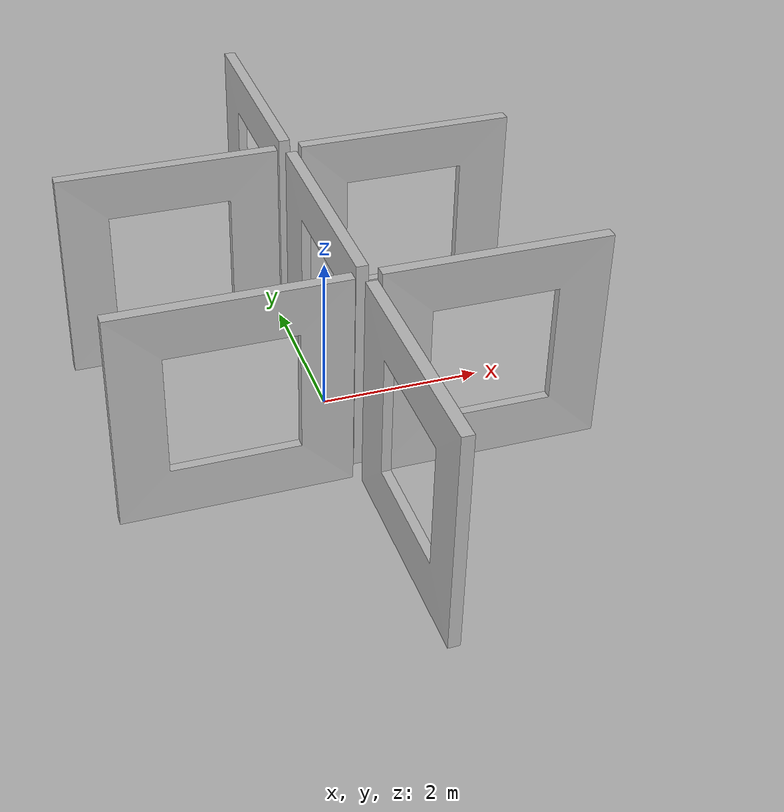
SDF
<?xml version="1.0" ?>
<?xml-model href="http://sdformat.org/schemas/root.xsd" schematypens="http://www.w3.org/2001/XMLSchema"?>
<sdf version="1.5">
  <world name="default">

    <!-- coordinate system {-->
    <spherical_coordinates>
      <surface_model>EARTH_WGS84</surface_model>
      <latitude_deg>47.397743</latitude_deg>
      <longitude_deg>8.545594</longitude_deg>
      <elevation>0.0</elevation>
      <heading_deg>0</heading_deg>
    </spherical_coordinates>

    <!-- physics engine {-->
    <physics name="default_physics" default="0" type="ode">
      <gravity>0 0 -9.8066</gravity>
      <ode>
        <solver>
          <type>quick</type>
          <iters>10</iters>
          <sor>1.3</sor>
          <use_dynamic_moi_rescaling>0</use_dynamic_moi_rescaling>
        </solver>
        <constraints>
          <cfm>0</cfm>
          <erp>0.2</erp>
          <contact_max_correcting_vel>250</contact_max_correcting_vel>
          <contact_surface_layer>0.004</contact_surface_layer>
        </constraints>
      </ode>
      <max_step_size>0.004</max_step_size>
      <real_time_factor>1</real_time_factor>
      <real_time_update_rate>250</real_time_update_rate>
      <magnetic_field>6.0e-06 2.3e-05 -4.2e-05</magnetic_field>
    </physics>

    <!-- setup shadows {-->
    <scene>
      <shadows>false</shadows>
      <sky>
        <clouds/>
      </sky>
    </scene>

    <!-- sun {-->

    <light name='sun' type='directional'>
      <pose frame=''>0 0 1000 0.4 0.2 0</pose>
      <diffuse>1 1 1 1</diffuse>
      <specular>0.6 0.6 0.6 1</specular>
      <direction>0.1 0.1 -0.9</direction>
      <attenuation>
        <range>20</range>
        <constant>0.5</constant>
        <linear>0.01</linear>
        <quadratic>0.001</quadratic>
      </attenuation>
      <cast_shadows>1</cast_shadows>
    </light>

    <!-- ground plane {-->
    <model name="ground_plane">
      <static>true</static>
      <link name="link">
        <collision name="collision">
          <pose>0 0 0 0 0 0</pose>
          <geometry>
            <plane>
              <normal>0 0 1</normal>
              <size>250 250</size>
            </plane>
          </geometry>
          <surface>
            <friction>
              <ode>
                <mu>1</mu>
                <mu2>1</mu2>
              </ode>
            </friction>
          </surface>
        </collision>
        <visual name="visual">
          <pose>0 0 0 0 0 0</pose>
          <cast_shadows>false</cast_shadows>
          <geometry>
            <plane>
              <normal>0 0 1</normal>
              <size>250 250</size>
            </plane>
          </geometry>
          <material>
            <ambient>0.5 0.5 0.5 1</ambient>
            <diffuse>0.7 0.7 0.7 1</diffuse>
            <specular>0.1 0.1 0.1 1</specular>
          </material>
        </visual>
      </link>
    </model>

    <!-- THE VOID (for spawning objects out of camera view) {-->
    <model name='the_void'>
      <static>1</static>
      <link name='link'>
        <pose frame=''>0 0 0.1 0 -0 0</pose>
        <visual name='the_void'>
          <pose frame=''>0 0 2 0 -0 0</pose>
          <geometry>
            <sphere>
              <radius>0.25</radius>
            </sphere>
          </geometry>
          <material>
            <ambient>0 0 0 1</ambient>
            <diffuse>0 0 0 1</diffuse>
            <specular>0.1 0.1 0.1 1</specular>
          </material>
        </visual>
        <self_collide>0</self_collide>
        <enable_wind>0</enable_wind>
        <kinematic>0</kinematic>
      </link>
      <pose frame=''>-1000 -1000 0 0 0 0</pose>
    </model>

    <!-- user camera {-->
    <gui>
      <camera name="camera">
        <pose>-60 -100 30 0 0.4 0.89</pose>
      </camera>
    </gui>

    <!-- Gate 1 -->
    <include>
      <uri>model://gate</uri>
      <pose>-1.5 -1.5 1.45 0 0 0</pose>
      <name>gate1</name>
    </include>

   <!-- Gate 2 = 6 -->

   <!-- Gate 3 -->
    <include>
      <uri>model://gate</uri>
      <pose>1.5 1.5 1.45 0 0 0</pose>
      <name>gate2</name>
    </include>

   <!-- Gate 4 -->
    <include>
      <uri>model://gate</uri>
      <pose>0.0 3.0 1.45 0 0 1.5708</pose>
      <name>gate3</name>
    </include>

   <!-- Gate 5 -->
    <include>
      <uri>model://gate</uri>
      <pose>-1.5 1.5 1.45 0 0 3.14</pose>
      <name>gate4top</name>
    </include>

   <!-- Gate 6 -->
    <include>
      <uri>model://gate</uri>
      <pose>0.0 0.0 1.45 0 0 -1.5708</pose>
      <name>gate4bottom</name>
    </include>

   <!-- Gate 7 -->
    <include>
      <uri>model://gate</uri>
      <pose>1.5 -1.5 1.45 0 0 3.14</pose>
      <name>gate5top</name>
    </include>

   <!-- Gate 8 -->
    <include>
      <uri>model://gate</uri>
      <pose>0.0 -3.0 1.45 0 0 1.5708</pose>
      <name>gate5bottom</name>
    </include>

  </world>
</sdf>

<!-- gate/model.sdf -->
<sdf version="1.6">
  <model name="gate">
    <static>true</static>
    <link name="link">
      <visual name="visual">
        <geometry>
          <mesh>
            <scale>1 1 1</scale>
            <uri>model://gate/meshes/gate.dae</uri>
          </mesh>
        </geometry>
      </visual>
    </link>
  </model>
</sdf>
